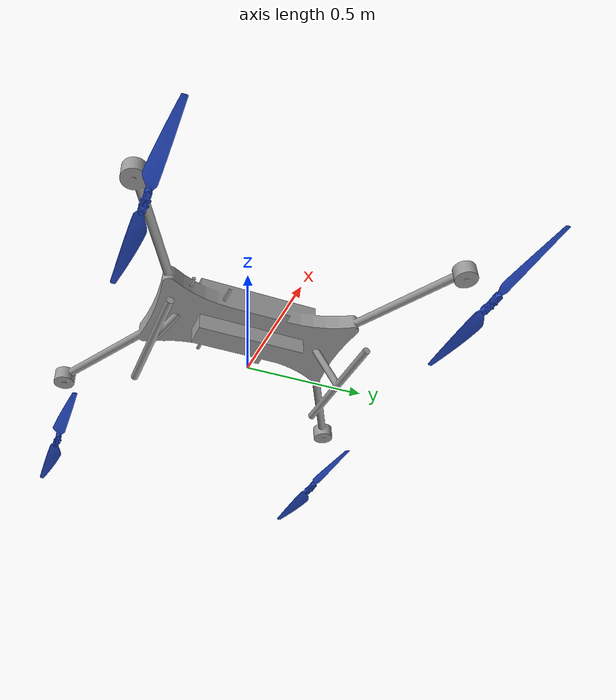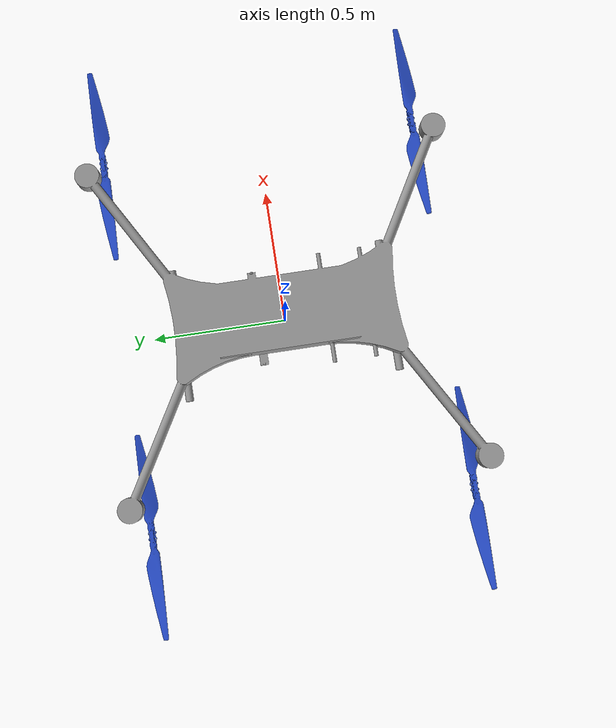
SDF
<?xml version="1.0" ?>

  <sdf version="1.5">
    <model name="tsd_c1">

      <include>
        <uri>model://tsd_c1_base</uri>
        <name>tsd_c1_base</name>
        <pose>0 0 0.0 0 0 0</pose>
      </include>
      <include>
        <uri>model://tsd_c1_prop</uri>
        <name>tsd_c1_prop_0</name>
        <pose>0.725 -0.615 -0.0465 0 0 0</pose>
      </include>
      <include>
        <uri>model://tsd_c1_prop</uri>
        <name>tsd_quad_c1_1</name>
        <pose>-0.725 -0.615 -0.0465 0 0 0</pose>
      </include>
      <include>
        <uri>model://tsd_c1_prop</uri>
        <name>tsd_c1_prop_2</name>
        <pose>-0.725 0.615 -0.0465 0 0 3.141592653589793</pose>
      </include>
      <include>
        <uri>model://tsd_c1_prop</uri>
        <name>tsd_c1_prop_3</name>
        <pose>0.725 0.615 -0.0465 0 0 3.141592653589793</pose>
      </include>

      <joint name="tsd_c1_prop_0_joint" type="revolute">
        <parent>tsd_c1_base::platform_base</parent>
        <child>tsd_c1_prop_0::prop </child>
        <axis>
          <xyz>0 0 1</xyz>
          <limit>
            <lower>-1e+16</lower>
            <upper>1e+16</upper>
          </limit>
          <dynamics>
            <damping>0.00001</damping>
          </dynamics>
          <use_parent_model_frame>1</use_parent_model_frame>
        </axis>
      </joint>

      <joint name="tsd_c1_prop_1_joint" type="revolute">
        <parent>tsd_c1_base::platform_base</parent>
        <child>tsd_c1_prop_1::prop </child>
        <axis>
          <xyz>0 0 1</xyz>
          <limit>
            <lower>-1e+16</lower>
            <upper>1e+16</upper>
          </limit>
          <dynamics>
            <damping>0.00001</damping>
          </dynamics>
          <use_parent_model_frame>1</use_parent_model_frame>
        </axis>
      </joint>

      <joint name="tsd_c1_prop_2_joint" type="revolute">
        <parent>tsd_c1_base::platform_base</parent>
        <child>tsd_c1_prop_2::prop </child>
        <axis>
          <xyz>0 0 1</xyz>
          <limit>
            <lower>-1e+16</lower>
            <upper>1e+16</upper>
          </limit>
          <dynamics>
            <damping>0.00001</damping>
          </dynamics>
          <use_parent_model_frame>1</use_parent_model_frame>
        </axis>
      </joint>

      <joint name="tsd_c1_prop_3_joint" type="revolute">
        <parent>tsd_c1_base::platform_base</parent>
        <child>tsd_c1_prop_3::prop </child>
        <axis>
          <xyz>0 0 1</xyz>
          <limit>
            <lower>-1e+16</lower>
            <upper>1e+16</upper>
          </limit>
          <dynamics>
            <damping>0.00001</damping>
          </dynamics>
          <use_parent_model_frame>1</use_parent_model_frame>
        </axis>
      </joint>

  </model>

</sdf>

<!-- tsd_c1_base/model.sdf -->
<sdf version="1.5">
    <model name="tsd_c1_platform">

      <link name="platform_base">
      <pose>0 0 0.0  0 0 0</pose>
      <inertial>
        <pose>0 0 0 0 0 0</pose>
        <mass>5.5</mass>
        <inertia>
          <ixx>0.5</ixx>
          <iyy>0.5</iyy>
          <izz>0.2</izz>
          <ixy>0</ixy>
          <ixz>0</ixz>
          <iyz>0</iyz>
        </inertia>
      </inertial>
      <collision name="platform_base_collision">
        <pose>0 0 0  0 0 0</pose>
        <geometry>
          <box>
            <size>0.750 0.750 0.406</size>
          </box>
        </geometry>
        <surface>
          <contact>
            <ode>
              <max_vel>100.0</max_vel>
              <min_depth>0.001</min_depth>
            </ode>
          </contact>
          <friction>
            <ode>
              <mu>100000.0</mu>
              <mu2>100000.0</mu2>
            </ode>
          </friction>
        </surface>
      </collision>
      <visual name="platform_base_visual">
        <geometry>
          <mesh>
            <uri>model://tsd_c1_base/meshes/body.STL</uri>
          </mesh>
        </geometry>
        <material>
          <script>
            <name>Gazebo/Grey</name>
          </script>
        </material>
      </visual>
    </link>
    <link name='imu_link'>
    <inertial>
      <pose>0 0 0 0 0 0</pose>
      <mass>0.15</mass>
      <inertia>
        <ixx>0.00001</ixx>
        <ixy>0</ixy>
        <ixz>0</ixz>
        <iyy>0.00002</iyy>
        <iyz>0</iyz>
        <izz>0.00002</izz>
      </inertia>
    </inertial>
    <sensor name="imu_sensor" type="imu">
      <pose>0 0 0 3.141593 0 0</pose>
      <always_on>1</always_on>
      <update_rate>1000.0</update_rate>
      <topic>__default_topic__</topic>
    </sensor>
  </link>
  <joint name='imu_joint' type='revolute'>
    <child>imu_link</child>
    <parent>platform_base</parent>
    <axis>
      <xyz>0 0 1</xyz>
      <limit>
        <lower>-0.0001</lower>
        <upper>0.00001</upper>
        <effort>0</effort>
        <velocity>0</velocity>
      </limit>
      <dynamics>
        <damping>1.0</damping>
      </dynamics>
      <use_parent_model_frame>1</use_parent_model_frame>
    </axis>
    <physics>
      <ode>
        <implicit_spring_damper>1</implicit_spring_damper>
      </ode>
    </physics>
  </joint>

</model>
</sdf>

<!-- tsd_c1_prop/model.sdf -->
<sdf version="1.5">
    <model name="tsd_c1_prop">
      <link name='prop'>
      <pose>0.0 -0.0 0.0 0 -0 0</pose>
      <inertial>
        <pose>0 0 0 0 -0 0</pose>
        <mass>0.025</mass>
        <inertia>
          <ixx>9.75e-06</ixx>
          <ixy>0</ixy>
          <ixz>0</ixz>
          <iyy>0.000166704</iyy>
          <iyz>0</iyz>
          <izz>0.000167604</izz>
        </inertia>
      </inertial>
      <collision name='rotor_collision'>
        <pose>0 0 0 0 -0 0</pose>
        <geometry>
          <cylinder>
            <length>0.005</length>
            <radius>0.2</radius>
          </cylinder>
        </geometry>
        <surface>
          <contact>
            <ode />
          </contact>
          <friction>
            <ode />
          </friction>
        </surface>
      </collision>
      <visual name='prop_visual'>
        <pose>0 0 0 0 -0 0</pose>
        <geometry>
          <mesh>
            <scale>1 1 1</scale>
            <uri>model://tsd_c1_prop/meshes/prop.STL</uri>
          </mesh>
        </geometry>
        <material>
          <script>
            <name>Gazebo/Blue</name>
            <uri>__default__</uri>
          </script>
        </material>
      </visual>
      <gravity>1</gravity>
      <velocity_decay />
      <self_collide>0</self_collide>
    </link>
  </model>
</sdf>
